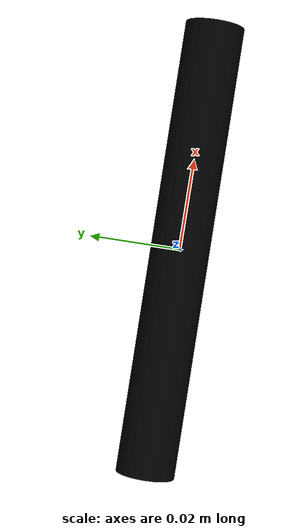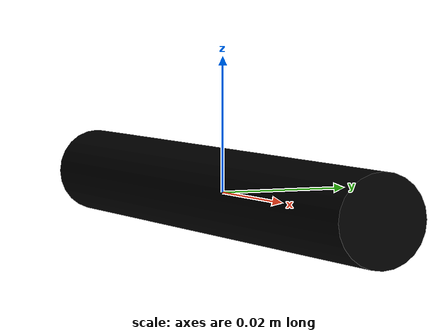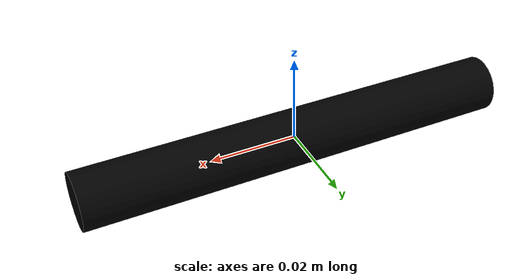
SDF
<sdf version="1.6">
  <model name="torpedo_two">
    <link name="torpedo_body">
      <inertial>
        <mass>0.5</mass>
        <inertia>
          <ixx>0.000422</ixx>
          <iyy>0.000422</iyy>
          <izz>0.000011</izz>
          <ixy>0</ixy>
          <ixz>0</ixz>
          <iyz>0</iyz>
        </inertia>
      </inertial>
      <gravity>0</gravity>
      <visual name="torpedo_visual">
        <geometry>
          <cylinder>
            <radius>0.0065</radius>
            <length>0.1</length>
          </cylinder>
        </geometry>
        <material>
          <ambient>0 0 0 1</ambient>
          <diffuse>0 0 0 1</diffuse>
          <specular>0 0 0 1</specular>
          <emissive>0 0 0 1</emissive>
        </material>
        <pose>0 0 0 0 1.5708 0</pose>
      </visual>
      <velocity_decay>
        <linear>0.0005</linear>
          <angular>0.0005</angular>
        </velocity_decay>
      <collision name="torpedo_collision">
        <geometry>
          <cylinder>
            <radius>0.0065</radius>
            <length>0.1</length>
          </cylinder>
        </geometry>
        <pose>0 0 0 0 1.5708 0</pose>
      </collision>
      <damping>
        <linear>0 0 0</linear>
        <angular>0 0 0</angular>
      </damping>
      <hydrodynamics>
        <added_mass>
          <linear>0.25 0.25 0.25</linear>
          <angular>0.05 0.05 0.05</angular>
        </added_mass>
        <drag>
          <linear>0 0 0</linear>
          <angular>0 0 0</angular>
        </drag>
      </hydrodynamics>
      <plugin name="hydrodynamics" filename="libhydrodynamics_plugin.so">
        <fluid_density>1000</fluid_density>
        <fluid_level>10</fluid_level>
        <linear_drag>0.0</linear_drag>
        <angular_drag>0.0</angular_drag>
        <buoyancy>0.0</buoyancy>
      </plugin>
    </link>
  </model>
</sdf>
